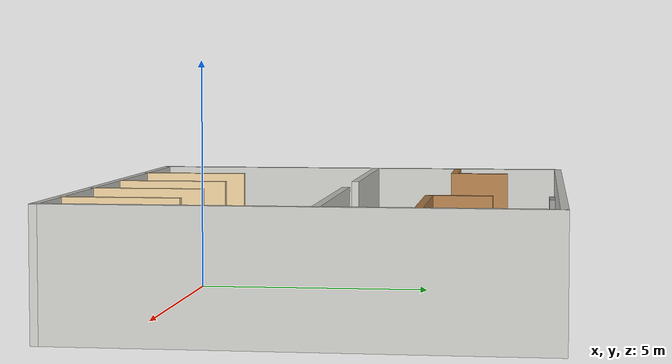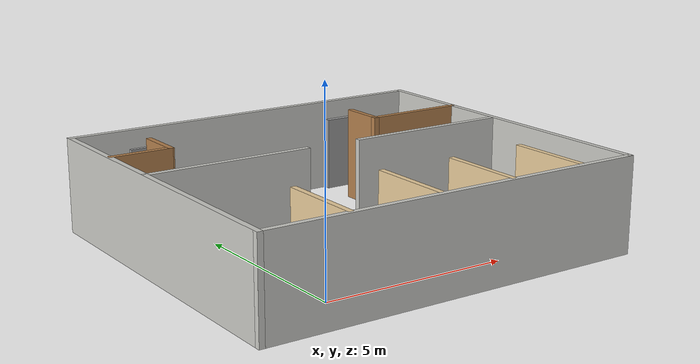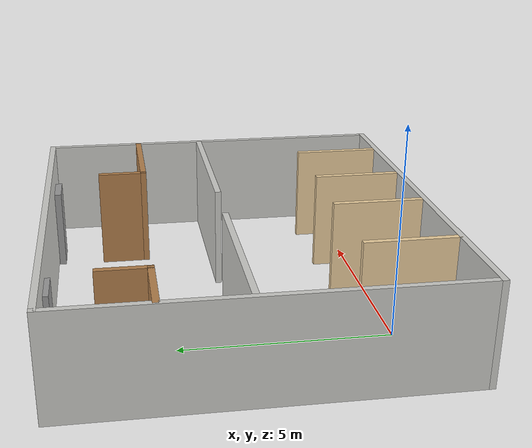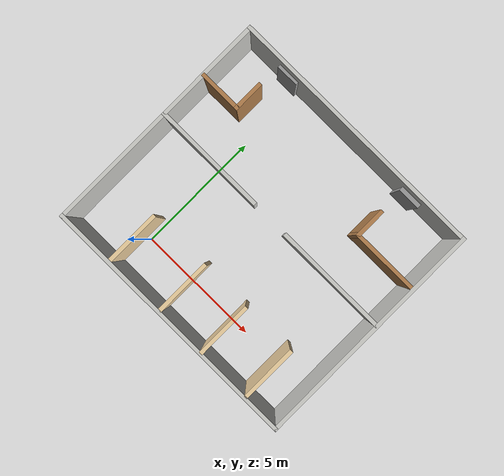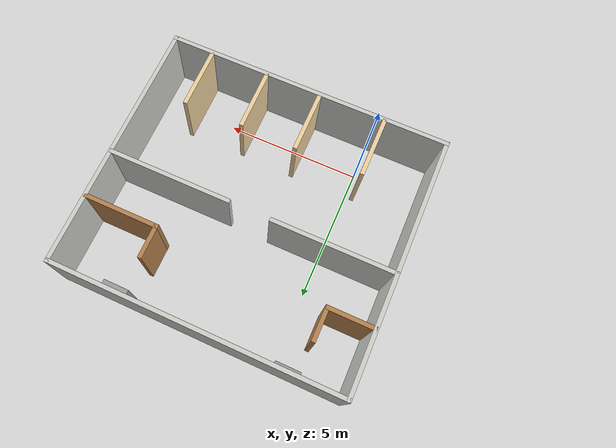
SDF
<?xml version='1.0'?>
<sdf version='1.7'>
  <model name='hospital_test'>
    <pose>2.685 3.2353 0 0 -0 0</pose>
    <link name='Door_0'>
      <collision name='Door_0_Collision'>
        <geometry>
          <box>
            <size>0.9 0.17 2</size>
          </box>
        </geometry>
        <pose>0 0 1 0 -0 0</pose>
      </collision>
      <visual name='Door_0_Visual'>
        <pose>0 0 1 0 -0 0</pose>
        <geometry>
          <box>
            <size>0.9 0.17 2</size>
          </box>
        </geometry>
        <material>
          <script>
            <uri>file://media/materials/scripts/gazebo.material</uri>
            <name>Gazebo/Grey</name>
          </script>
        </material>
      </visual>
      <pose>-3.16128 4.47241 0 0 -0 0</pose>
    </link>
    <link name='Door_1'>
      <collision name='Door_1_Collision'>
        <geometry>
          <box>
            <size>0.9 0.17 2</size>
          </box>
        </geometry>
        <pose>0 0 1 0 -0 0</pose>
      </collision>
      <visual name='Door_1_Visual'>
        <pose>0 0 1 0 -0 0</pose>
        <geometry>
          <box>
            <size>0.9 0.17 2</size>
          </box>
        </geometry>
        <material>
          <script>
            <uri>file://media/materials/scripts/gazebo.material</uri>
            <name>Gazebo/Grey</name>
          </script>
        </material>
      </visual>
      <pose>2.92207 4.40301 0 0 -0 0</pose>
    </link>
    <link name='Wall_0'>
      <collision name='Wall_0_Collision'>
        <geometry>
          <box>
            <size>9.31939 0.15 2.5</size>
          </box>
        </geometry>
        <pose>0 0 1.25 0 -0 0</pose>
      </collision>
      <visual name='Wall_0_Visual'>
        <pose>0 0 1.25 0 -0 0</pose>
        <geometry>
          <box>
            <size>9.31939 0.15 2.5</size>
          </box>
        </geometry>
        <material>
          <script>
            <uri>file://media/materials/scripts/gazebo.material</uri>
            <name>Gazebo/CeilingTiled</name>
          </script>
          <ambient>1 1 1 1</ambient>
        </material>
        <meta>
          <layer>0</layer>
        </meta>
      </visual>
      <pose>-5.175 0 0 0 -0 1.5708</pose>
    </link>
    <link name='Wall_1'>
      <collision name='Wall_1_Collision'>
        <geometry>
          <box>
            <size>10.5 0.15 2.5</size>
          </box>
        </geometry>
        <pose>0 0 1.25 0 -0 0</pose>
      </collision>
      <visual name='Wall_1_Visual'>
        <pose>0 0 1.25 0 -0 0</pose>
        <geometry>
          <box>
            <size>10.5 0.15 2.5</size>
          </box>
        </geometry>
        <material>
          <script>
            <uri>file://media/materials/scripts/gazebo.material</uri>
            <name>Gazebo/CeilingTiled</name>
          </script>
          <ambient>1 1 1 1</ambient>
        </material>
        <meta>
          <layer>0</layer>
        </meta>
      </visual>
      <pose>-0 4.5847 0 0 -0 0</pose>
    </link>
    <link name='Wall_10'>
      <collision name='Wall_10_Collision'>
        <geometry>
          <box>
            <size>2.25 0.15 2.5</size>
          </box>
        </geometry>
        <pose>0 0 1.25 0 -0 0</pose>
      </collision>
      <visual name='Wall_10_Visual'>
        <pose>0 0 1.25 0 -0 0</pose>
        <geometry>
          <box>
            <size>2.25 0.15 2.5</size>
          </box>
        </geometry>
        <material>
          <script>
            <uri>file://media/materials/scripts/gazebo.material</uri>
            <name>Gazebo/Grey</name>
          </script>
          <ambient>0.921569 0.807843 0.615686 1</ambient>
        </material>
        <meta>
          <layer>0</layer>
        </meta>
      </visual>
      <pose>-2.92997 -3.45227 0 0 -0 1.5708</pose>
    </link>
    <link name='Wall_12'>
      <collision name='Wall_12_Collision'>
        <geometry>
          <box>
            <size>2.25 0.15 2.5</size>
          </box>
        </geometry>
        <pose>0 0 1.25 0 -0 0</pose>
      </collision>
      <visual name='Wall_12_Visual'>
        <pose>0 0 1.25 0 -0 0</pose>
        <geometry>
          <box>
            <size>2.25 0.15 2.5</size>
          </box>
        </geometry>
        <material>
          <script>
            <uri>file://media/materials/scripts/gazebo.material</uri>
            <name>Gazebo/Grey</name>
          </script>
          <ambient>0.921569 0.807843 0.615686 1</ambient>
        </material>
        <meta>
          <layer>0</layer>
        </meta>
      </visual>
      <pose>-0.501259 -3.40601 0 0 -0 1.5708</pose>
    </link>
    <link name='Wall_15'>
      <collision name='Wall_15_Collision'>
        <geometry>
          <box>
            <size>2.25 0.15 2.5</size>
          </box>
        </geometry>
        <pose>0 0 1.25 0 -0 0</pose>
      </collision>
      <visual name='Wall_15_Visual'>
        <pose>0 0 1.25 0 -0 0</pose>
        <geometry>
          <box>
            <size>2.25 0.15 2.5</size>
          </box>
        </geometry>
        <material>
          <script>
            <uri>file://media/materials/scripts/gazebo.material</uri>
            <name>Gazebo/Grey</name>
          </script>
          <ambient>0.921569 0.807843 0.615686 1</ambient>
        </material>
        <meta>
          <layer>0</layer>
        </meta>
      </visual>
      <pose>1.53424 -3.45227 0 0 -0 1.5708</pose>
    </link>
    <link name='Wall_17'>
      <collision name='Wall_17_Collision'>
        <geometry>
          <box>
            <size>2.25 0.15 2.5</size>
          </box>
        </geometry>
        <pose>0 0 1.25 0 -0 0</pose>
      </collision>
      <visual name='Wall_17_Visual'>
        <pose>0 0 1.25 0 -0 0</pose>
        <geometry>
          <box>
            <size>2.25 0.15 2.5</size>
          </box>
        </geometry>
        <material>
          <script>
            <uri>file://media/materials/scripts/gazebo.material</uri>
            <name>Gazebo/Grey</name>
          </script>
          <ambient>0.921569 0.807843 0.615686 1</ambient>
        </material>
        <meta>
          <layer>0</layer>
        </meta>
      </visual>
      <pose>3.68538 -3.42914 0 0 -0 1.5708</pose>
    </link>
    <link name='Wall_19'>
      <collision name='Wall_19_Collision'>
        <geometry>
          <box>
            <size>2.75 0.15 2.5</size>
          </box>
        </geometry>
        <pose>0 0 1.25 0 -0 0</pose>
      </collision>
      <visual name='Wall_19_Visual'>
        <pose>0 0 1.25 0 -0 0</pose>
        <geometry>
          <box>
            <size>2.75 0.15 2.5</size>
          </box>
        </geometry>
        <material>
          <script>
            <uri>file://media/materials/scripts/gazebo.material</uri>
            <name>Gazebo/Wood</name>
          </script>
          <ambient>1 1 1 1</ambient>
        </material>
        <meta>
          <layer>0</layer>
        </meta>
      </visual>
      <pose>3.81948 2.13621 0 0 -0 3.14159</pose>
    </link>
    <link name='Wall_2'>
      <collision name='Wall_2_Collision'>
        <geometry>
          <box>
            <size>9.29626 0.15 2.5</size>
          </box>
        </geometry>
        <pose>0 0 1.25 0 -0 0</pose>
      </collision>
      <visual name='Wall_2_Visual'>
        <pose>0 0 1.25 0 -0 0</pose>
        <geometry>
          <box>
            <size>9.29626 0.15 2.5</size>
          </box>
        </geometry>
        <material>
          <script>
            <uri>file://media/materials/scripts/gazebo.material</uri>
            <name>Gazebo/CeilingTiled</name>
          </script>
          <ambient>1 1 1 1</ambient>
        </material>
        <meta>
          <layer>0</layer>
        </meta>
      </visual>
      <pose>5.175 0.011565 0 0 -0 -1.5708</pose>
    </link>
    <link name='Wall_20'>
      <collision name='Wall_20_Collision'>
        <geometry>
          <box>
            <size>1.25 0.15 2.5</size>
          </box>
        </geometry>
        <pose>0 0 1.25 0 -0 0</pose>
      </collision>
      <visual name='Wall_20_Visual'>
        <pose>0 0 1.25 0 -0 0</pose>
        <geometry>
          <box>
            <size>1.25 0.15 2.5</size>
          </box>
        </geometry>
        <material>
          <script>
            <uri>file://media/materials/scripts/gazebo.material</uri>
            <name>Gazebo/Wood</name>
          </script>
          <ambient>1 1 1 1</ambient>
        </material>
        <meta>
          <layer>0</layer>
        </meta>
      </visual>
      <pose>2.51948 2.68621 0 0 -0 1.5708</pose>
    </link>
    <link name='Wall_22'>
      <collision name='Wall_22_Collision'>
        <geometry>
          <box>
            <size>4.5 0.15 2.5</size>
          </box>
        </geometry>
        <pose>0 0 1.25 0 -0 0</pose>
      </collision>
      <visual name='Wall_22_Visual'>
        <pose>0 0 1.25 0 -0 0</pose>
        <geometry>
          <box>
            <size>4.5 0.15 2.5</size>
          </box>
        </geometry>
        <material>
          <script>
            <uri>file://media/materials/scripts/gazebo.material</uri>
            <name>Gazebo/CeilingTiled</name>
          </script>
          <ambient>0.760784 0.662745 0.627451 1</ambient>
        </material>
        <meta>
          <layer>0</layer>
        </meta>
      </visual>
      <pose>-2.99838 0.389527 0 0 -0 0</pose>
    </link>
    <link name='Wall_25'>
      <collision name='Wall_25_Collision'>
        <geometry>
          <box>
            <size>4.5 0.15 2.5</size>
          </box>
        </geometry>
        <pose>0 0 1.25 0 -0 0</pose>
      </collision>
      <visual name='Wall_25_Visual'>
        <pose>0 0 1.25 0 -0 0</pose>
        <geometry>
          <box>
            <size>4.5 0.15 2.5</size>
          </box>
        </geometry>
        <material>
          <script>
            <uri>file://media/materials/scripts/gazebo.material</uri>
            <name>Gazebo/CeilingTiled</name>
          </script>
          <ambient>0.760784 0.662745 0.627451 1</ambient>
        </material>
        <meta>
          <layer>0</layer>
        </meta>
      </visual>
      <pose>2.9485 0.371347 0 0 -0 3.14159</pose>
    </link>
    <link name='Wall_3'>
      <collision name='Wall_3_Collision'>
        <geometry>
          <box>
            <size>10.5 0.15 2.5</size>
          </box>
        </geometry>
        <pose>0 0 1.25 0 -0 0</pose>
      </collision>
      <visual name='Wall_3_Visual'>
        <pose>0 0 1.25 0 -0 0</pose>
        <geometry>
          <box>
            <size>10.5 0.15 2.5</size>
          </box>
        </geometry>
        <material>
          <script>
            <uri>file://media/materials/scripts/gazebo.material</uri>
            <name>Gazebo/CeilingTiled</name>
          </script>
          <ambient>1 1 1 1</ambient>
        </material>
        <meta>
          <layer>0</layer>
        </meta>
      </visual>
      <pose>-0 -4.5847 0 0 -0 3.14159</pose>
    </link>
    <link name='Wall_5'>
      <collision name='Wall_5_Collision'>
        <geometry>
          <box>
            <size>1.70374 0.15 2.5</size>
          </box>
        </geometry>
        <pose>0 0 1.25 0 -0 0</pose>
      </collision>
      <visual name='Wall_5_Visual'>
        <pose>0 0 1.25 0 -0 0</pose>
        <geometry>
          <box>
            <size>1.70374 0.15 2.5</size>
          </box>
        </geometry>
        <material>
          <script>
            <uri>file://media/materials/scripts/gazebo.material</uri>
            <name>Gazebo/Wood</name>
          </script>
          <ambient>1 1 1 1</ambient>
        </material>
        <meta>
          <layer>0</layer>
        </meta>
      </visual>
      <pose>-4.3545 2.29813 0 0 -0 3.14159</pose>
    </link>
    <link name='Wall_8'>
      <collision name='Wall_8_Collision'>
        <geometry>
          <box>
            <size>1.25 0.15 2.5</size>
          </box>
        </geometry>
        <pose>0 0 1.25 0 -0 0</pose>
      </collision>
      <visual name='Wall_8_Visual'>
        <pose>0 0 1.25 0 -0 0</pose>
        <geometry>
          <box>
            <size>1.25 0.15 2.5</size>
          </box>
        </geometry>
        <material>
          <script>
            <uri>file://media/materials/scripts/gazebo.material</uri>
            <name>Gazebo/Wood</name>
          </script>
          <ambient>1 1 1 1</ambient>
        </material>
        <meta>
          <layer>0</layer>
        </meta>
      </visual>
      <pose>-3.5545 2.84813 0 0 -0 -1.5708</pose>
    </link>
    <static>1</static>
  </model>
</sdf>
